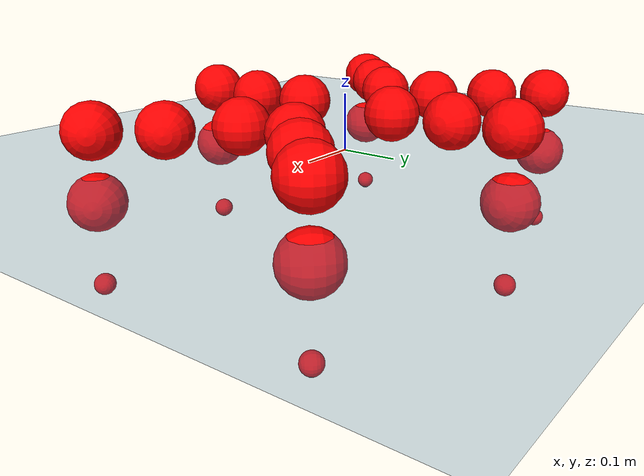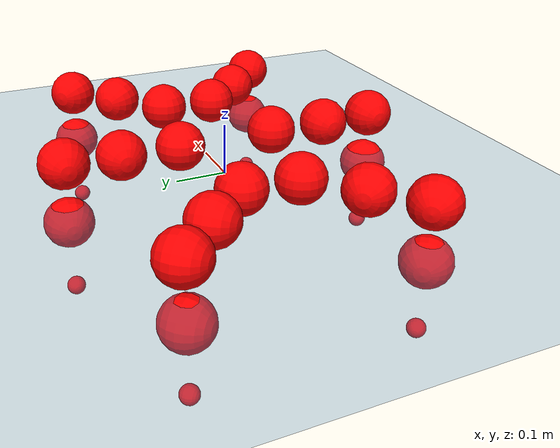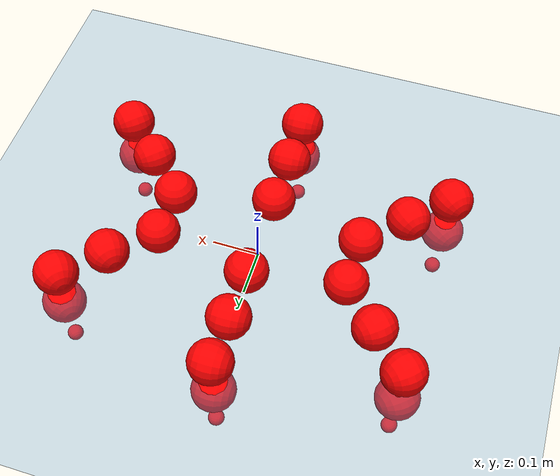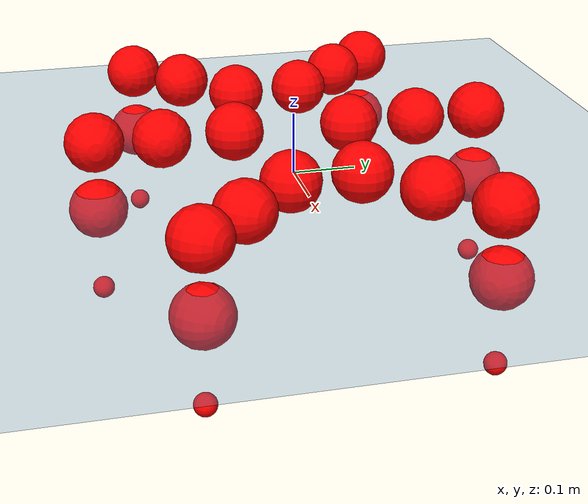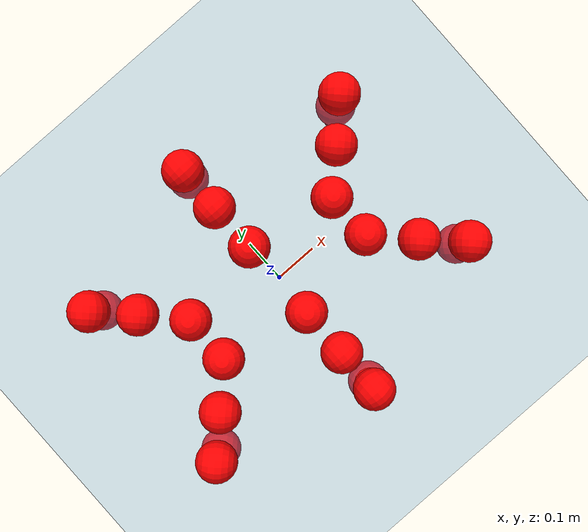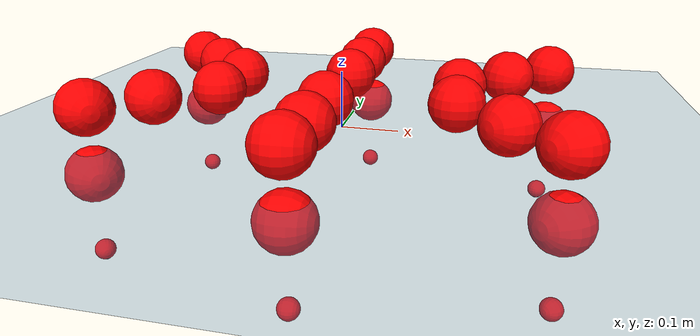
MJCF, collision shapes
<mujoco model="Golem">
  <compiler angle="radian" assetdir="assets" balanceinertia="true" inertiafromgeom="false"/>

  <option timestep="0.005" density="1.2" viscosity="2e-05"/>

  <size nkey="1"/>

  <visual>
    <quality shadowsize="8192"/>
    <map shadowclip="0.5"/>
  </visual>

  <default>
    <default class="/">
      <joint armature="0.01" damping="0.01" frictionloss="0.01"/>
      <geom contype="0" conaffinity="0" group="1" solref="-1000 -80"/>
      <site size="0.01 0.005 0.005" group="5"/>
      <general forcelimited="true" biastype="affine" gainprm="25" biasprm="0 -25 -0.5"/>
      <default class="visual">
        <geom type="mesh" group="2"/>
      </default>
      <default class="collision">
        <geom group="3"/>
      </default>
      <default class="foot">
        <geom size="0.01 0 0" condim="6" group="4" priority="1" solimp="0.015 1 0.01"/>
      </default>
      <default class="reward_collision_sphere">
        <geom group="5" rgba="1 0 0 1"/>
      </default>
    </default>
  </default>

  <asset>
    <texture type="skybox" colorspace="auto" name="//unnamed_texture_0" builtin="gradient" rgb1="0.95 0.95 0.95" rgb2="0.95 0.95 0.95" width="100" height="600"/>
    <texture type="2d" colorspace="auto" name="texplane" builtin="checker" rgb1="0.345 0.575 0.748" rgb2="0.345 0.575 0.748" markrgb="1 1 1" width="512" height="512"/>
    <material name="MatPlane" class="/" texture="texplane" texuniform="true" texrepeat="2 2" specular="0.9"/>
    <mesh name="body" class="/" file="body.stl" scale="0.001 0.001 0.001"/>
    <mesh name="coxa" class="/" file="coxa.stl" scale="0.001 0.001 0.001"/>
    <mesh name="femur" class="/" file="femur.stl" scale="0.001 0.001 0.001"/>
    <mesh name="tibia" class="/" file="tibia.stl" scale="0.001 0.001 0.001"/>
    <mesh name="tarsus" class="/" file="tarsus.stl" scale="0.001 0.001 0.001"/>
  </asset>

  <worldbody>
    <geom name="floor" class="/" size="100 100 0.125" type="plane" group="0" material="MatPlane"/>
    <light name="toplight_shadow" class="/" pos="0 0 5" dir="0.0990148 0.0990148 -0.990148" type="directional" ambient="0.04 0.04 0.04" diffuse="0.55 0.55 0.55" specular="0.12 0.12 0.12"/>
    <light name="toplight_fill" class="/" pos="0 0 5" dir="0.0990148 0.0990148 -0.990148" type="directional" castshadow="false" ambient="0.04 0.04 0.04" diffuse="0.3 0.3 0.3" specular="0.08 0.08 0.08"/>
    <body name="trunk" pos="-0.00283084 4.24037e-05 -0.00263845" quat="1 8.40707e-05 -6.64113e-05 -0.000104144">
      <inertial pos="0.000803734 -0.00150816 -0.00285136" quat="0.999961 0.00522005 -0.00218636 -0.00672227" mass="5.60617" diaginertia="0.0341092 0.00987892 0.0225711"/>
      <joint name="//unnamed_joint_0" type="free"/>
      <geom name="//unnamed_geom_1" class="/" pos="0 0 0.0756038" quat="1 0 0 0" type="mesh" rgba="0.9 0.9 0.9 1" mesh="body"/>
      <site name="imu" class="/" pos="0.179671 -0.00796543 0.105568" size="0.0115611"/>
      <camera name="track" class="/" pos="0 -1.99811 0" quat="0.707107 0.707107 0 0" mode="trackcom"/>
      <camera name="ego_camera" class="/" pos="0.167436 0 0.118131" quat="-0.5 -0.5 0.5 0.5"/>
      <body name="coxa_RR" pos="-0.229778 -0.0802847 0.0756001" quat="0.382691 0.000344587 -2.14083e-05 -0.923876">
        <inertial pos="-0.00147855 0.000542004 -0.00205276" quat="0.999899 -0.0103598 -0.00581107 0.00775532" mass="0.298075" diaginertia="0.035216 0.00970171 0.022134"/>
        <joint name="coxa_joint_RR" class="/" pos="0 0 0" axis="-0.00215721 0.00872757 -0.99996" range="-3.18481 3.17498" armature="0.0101266" damping="0" frictionloss="0.0099648"/>
        <geom name="//unnamed_geom_2" class="/" type="mesh" rgba="0.2 0.2 0.2 1" mesh="coxa"/>
        <geom name="//unnamed_geom_3" class="reward_collision_sphere" size="0.0462445" pos="-0.0386391 0 0"/>
        <body name="femur_RR" pos="0.0767005 0.000186665 0.000717354" quat="0.499969 -0.4999 0.500122 0.500009">
          <inertial pos="-0.00219247 0.00182202 0.0010426" quat="1 0.000651493 -0.000172937 -0.000101748" mass="0.308834" diaginertia="0.0363535 0.0100713 0.0233459"/>
          <joint name="femur_joint_RR" class="/" pos="0 0 0" axis="-0.00522791 -0.00539014 -0.999972" range="-3.14186 3.14495" armature="0.0123944" damping="0.0224247" frictionloss="0.0121335"/>
          <geom name="//unnamed_geom_4" class="/" type="mesh" rgba="0.9 0.9 0.9 1" mesh="femur"/>
          <geom name="//unnamed_geom_5" class="reward_collision_sphere" size="0.0462445"/>
          <body name="tibia_RR" pos="0.00132908 -0.10719 -0.000691632" quat="0.000155865 1 -5.0236e-05 -0.000510758">
            <inertial pos="0.00261963 -0.000671662 0.000185387" quat="0.999988 -0.00165988 0.00440941 0.00127199" mass="0.31992" diaginertia="0.0351876 0.00997992 0.0231392"/>
            <joint name="tibia_joint_RR" class="/" pos="0 0 0" axis="0.00357643 -0.00377628 0.999986" range="-3.14055 3.14451" armature="0.01091" damping="0.0181205" frictionloss="0.00992159"/>
            <geom name="//unnamed_geom_6" class="/" type="mesh" rgba="0.2 0.2 0.2 1" mesh="tibia"/>
            <geom name="//unnamed_geom_7" class="reward_collision_sphere" size="0.0462445"/>
            <body name="tarsus_RR" pos="0.112199 -0.000461305 -0.000414954" quat="1 0.000226705 -0.00020484 0.000358954">
              <inertial pos="0.0747087 -0.000914579 0.000645633" quat="0.494467 0.502753 0.492745 0.509847" mass="0.315588" diaginertia="0.0358502 0.00971942 0.0226521"/>
              <joint name="tarsus_joint_RR" class="/" pos="0 0 0" axis="0.000226315 0.0107339 0.999942" stiffness="0.000646296" range="-3.16262 3.15579" armature="0.0109464" damping="0.0170332" frictionloss="0.0112785"/>
              <geom name="//unnamed_geom_8" class="/" type="mesh" rgba="0.9 0.9 0.9 1" mesh="tarsus"/>
              <geom name="foot_1" class="foot" size="0.0127503" pos="0.144253 0 0" quat="0 -0.707107 0 0.707107"/>
              <geom name="//unnamed_geom_10" class="reward_collision_sphere" size="0.0462445"/>
              <geom name="//unnamed_geom_11" class="reward_collision_sphere" size="0.0173417" pos="0.138457 0 0"/>
              <site name="foot_1" class="foot" pos="0.144253 0 0" quat="0 -0.707107 0 0.707107" size="0.0115611"/>
            </body>
          </body>
        </body>
      </body>
      <body name="coxa_RM" pos="-0.00203058 -0.133534 0.0798551" quat="0.706906 0.000526727 0.00113673 -0.707306">
        <inertial pos="-0.00111209 -0.00279568 -0.00112023" quat="0.999976 0.00330988 0.00424498 0.00425414" mass="0.31676" diaginertia="0.0369842 0.00994066 0.0238506"/>
        <joint name="coxa_joint_RM" class="/" pos="0 0 0" axis="0.0086721 -0.00158787 -0.999961" range="-3.1428 3.13253" armature="0.0118532" damping="0.00816352" frictionloss="0.0120062"/>
        <geom name="//unnamed_geom_12" class="/" type="mesh" rgba="0.2 0.2 0.2 1" mesh="coxa"/>
        <geom name="//unnamed_geom_13" class="reward_collision_sphere" size="0.0462445" pos="-0.0386391 0 0"/>
        <body name="femur_RM" pos="0.0764952 -6.51659e-06 -0.00154023" quat="0.499415 -0.500575 0.50038 0.499629">
          <inertial pos="-0.00167405 -0.00287862 -0.000993628" quat="0.99999 -0.00372984 -0.0018839 -0.00176264" mass="0.318588" diaginertia="0.0358304 0.00997059 0.0237378"/>
          <joint name="femur_joint_RM" class="/" pos="0 0 0" axis="0.013889 0.00141228 -0.999903" stiffness="0.00661234" range="-3.125 3.1763" armature="0.0127411" damping="0.0192496" frictionloss="0.0103369"/>
          <geom name="//unnamed_geom_14" class="/" type="mesh" rgba="0.9 0.9 0.9 1" mesh="femur"/>
          <geom name="//unnamed_geom_15" class="reward_collision_sphere" size="0.0462445"/>
          <body name="tibia_RM" pos="-0.00304212 -0.104653 0.000868247" quat="0.000590389 0.999999 9.8119e-06 0.00112395">
            <inertial pos="-0.000579385 0.000747587 0.000902299" quat="1 0.000766386 -0.000378452 7.62047e-05" mass="0.312617" diaginertia="0.0376122 0.0105557 0.0233534"/>
            <joint name="tibia_joint_RM" class="/" pos="0 0 0" axis="0.00823414 0.00276552 0.999962" range="-3.10112 3.09296" armature="0.0118626" damping="0" frictionloss="0.0129364"/>
            <geom name="//unnamed_geom_16" class="/" type="mesh" rgba="0.2 0.2 0.2 1" mesh="tibia"/>
            <geom name="//unnamed_geom_17" class="reward_collision_sphere" size="0.0462445"/>
            <body name="tarsus_RM" pos="0.109762 -0.000412127 -0.00163576" quat="1 5.53007e-05 -0.000271423 4.63459e-05">
              <inertial pos="0.0766045 0.000306018 0.00307137" quat="0.509193 0.501019 0.490054 0.499549" mass="0.314081" diaginertia="0.0374435 0.0101761 0.0231104"/>
              <joint name="tarsus_joint_RM" class="/" pos="0 0 0" axis="-0.00153672 0.00778595 0.999969" range="-3.18444 3.10836" armature="0.0115818" damping="0.0139373" frictionloss="0.0111367"/>
              <geom name="//unnamed_geom_18" class="/" type="mesh" rgba="0.9 0.9 0.9 1" mesh="tarsus"/>
              <geom name="foot_2" class="foot" size="0.0122203" pos="0.144253 0 0" quat="0 -0.707107 0 0.707107"/>
              <geom name="//unnamed_geom_20" class="reward_collision_sphere" size="0.0462445"/>
              <geom name="//unnamed_geom_21" class="reward_collision_sphere" size="0.0173417" pos="0.138457 0 0"/>
              <site name="foot_2" class="foot" pos="0.144253 0 0" quat="0 -0.707107 0 0.707107" size="0.0115611"/>
            </body>
          </body>
        </body>
      </body>
      <body name="coxa_RF" pos="0.231113 -0.0803397 0.0746342" quat="0.923909 -0.000890895 -0.000840801 -0.38261">
        <inertial pos="0.00209868 -0.000557252 0.000328284" quat="0.999982 -0.00452299 -0.0038323 0.000233561" mass="0.315908" diaginertia="0.0359638 0.0103032 0.023855"/>
        <joint name="coxa_joint_RF" class="/" pos="0 0 0" axis="0.0108919 0.00684247 -0.999917" range="-3.14071 3.19428" armature="0.012092" damping="0" frictionloss="0.0113476"/>
        <geom name="//unnamed_geom_22" class="/" type="mesh" rgba="0.2 0.2 0.2 1" mesh="coxa"/>
        <geom name="//unnamed_geom_23" class="reward_collision_sphere" size="0.0462445" pos="-0.0386391 0 0"/>
        <body name="femur_RF" pos="0.077939 -0.00197023 -0.00310435" quat="0.500143 -0.499564 0.500228 0.500065">
          <inertial pos="-0.000513444 -0.000101839 0.00265431" quat="0.999987 -0.00035631 -0.00367284 0.00340518" mass="0.30855" diaginertia="0.0355302 0.0101516 0.0240273"/>
          <joint name="femur_joint_RF" class="/" pos="0 0 0" axis="-0.000782749 0.00099888 -0.999999" range="-3.10336 3.14585" armature="0.0116828" damping="0.00836479" frictionloss="0.00996813"/>
          <geom name="//unnamed_geom_24" class="/" type="mesh" rgba="0.9 0.9 0.9 1" mesh="femur"/>
          <geom name="//unnamed_geom_25" class="reward_collision_sphere" size="0.0462445"/>
          <body name="tibia_RF" pos="-0.00318216 -0.10866 0.0026689" quat="-0.000121558 1 1.83983e-05 -3.05169e-05">
            <inertial pos="0.00290162 -0.00245102 -0.000228938" quat="0.999977 -0.00350468 -0.00583273 -0.000248588" mass="0.304459" diaginertia="0.0349201 0.00961066 0.0229971"/>
            <joint name="tibia_joint_RF" class="/" pos="0 0 0" axis="-0.0119932 -0.0037096 0.999921" range="-3.14348 3.13461" armature="0.0116355" damping="0.0183169" frictionloss="0.0121676"/>
            <geom name="//unnamed_geom_26" class="/" type="mesh" rgba="0.2 0.2 0.2 1" mesh="tibia"/>
            <geom name="//unnamed_geom_27" class="reward_collision_sphere" size="0.0462445"/>
            <body name="tarsus_RF" pos="0.113784 0.000479988 -0.000525248" quat="0.999999 0.00020422 -1.52133e-05 0.00137091">
              <inertial pos="0.0801436 -0.00203989 0.00177846" quat="0.497055 0.496139 0.505274 0.501479" mass="0.305006" diaginertia="0.0358657 0.00968958 0.0238886"/>
              <joint name="tarsus_joint_RF" class="/" pos="0 0 0" axis="-0.0126766 0.00555911 0.999904" range="-3.19406 3.13929" armature="0.0115398" damping="0.0146563" frictionloss="0.0108584"/>
              <geom name="//unnamed_geom_28" class="/" type="mesh" rgba="0.9 0.9 0.9 1" mesh="tarsus"/>
              <geom name="foot_3" class="foot" size="0.0114866" pos="0.144253 0 0" quat="0 -0.707107 0 0.707107"/>
              <geom name="//unnamed_geom_30" class="reward_collision_sphere" size="0.0462445"/>
              <geom name="//unnamed_geom_31" class="reward_collision_sphere" size="0.0173417" pos="0.138457 0 0"/>
              <site name="foot_3" class="foot" pos="0.144253 0 0" quat="0 -0.707107 0 0.707107" size="0.0115611"/>
            </body>
          </body>
        </body>
      </body>
      <body name="coxa_LR" pos="-0.227788 0.0840228 0.076841" quat="0.382357 -0.000213989 0.00115822 0.924014">
        <inertial pos="0.000218757 -0.000610576 0.00242893" quat="0.999987 0.00108458 0.0046512 -0.00158744" mass="0.311517" diaginertia="0.0363324 0.0102923 0.0230026"/>
        <joint name="coxa_joint_LR" class="/" pos="0 0 0" axis="-0.000352838 -0.00206411 -0.999998" range="-3.18892 3.16823" armature="0.0103209" damping="0.00885319" frictionloss="0.0106024"/>
        <geom name="//unnamed_geom_32" class="/" type="mesh" rgba="0.2 0.2 0.2 1" mesh="coxa"/>
        <geom name="//unnamed_geom_33" class="reward_collision_sphere" size="0.0462445" pos="-0.0386391 0 0"/>
        <body name="femur_LR" pos="0.0754634 -0.00335195 0.00101361" quat="0.499926 -0.499849 0.500447 0.499778">
          <inertial pos="0.00218874 -0.00245983 0.00270205" quat="0.999961 -0.0050324 -8.47887e-05 0.00720648" mass="0.306302" diaginertia="0.0359155 0.0099934 0.0232671"/>
          <joint name="femur_joint_LR" class="/" pos="0 0 0" axis="0.0083475 -0.00246309 0.999962" stiffness="0.00138825" range="-3.16229 3.10145" armature="0.0105176" damping="0" frictionloss="0.0114772"/>
          <geom name="//unnamed_geom_34" class="/" type="mesh" rgba="0.9 0.9 0.9 1" mesh="femur"/>
          <geom name="//unnamed_geom_35" class="reward_collision_sphere" size="0.0462445"/>
          <body name="tibia_LR" pos="0.00220542 -0.106552 -0.000121401" quat="0.000830165 0.999999 7.6209e-05 0.000992408">
            <inertial pos="0.00266202 -0.00234846 0.00172641" quat="0.999997 -0.00118159 -0.00199036 -0.000311975" mass="0.321333" diaginertia="0.0359216 0.0103209 0.0223364"/>
            <joint name="tibia_joint_LR" class="/" pos="0 0 0" axis="0.0042781 -0.0096235 -0.999945" range="-3.1543 3.09101" armature="0.0105283" damping="0.0128159" frictionloss="0.0117398"/>
            <geom name="//unnamed_geom_36" class="/" type="mesh" rgba="0.2 0.2 0.2 1" mesh="tibia"/>
            <geom name="//unnamed_geom_37" class="reward_collision_sphere" size="0.0462445"/>
            <body name="tarsus_LR" pos="0.115382 -0.000923463 -0.00243239" quat="1 0.000282999 -0.000808483 -0.000339257">
              <inertial pos="0.0754692 -0.00235392 -0.00141597" quat="0.499412 0.500229 0.500489 0.499869" mass="0.308909" diaginertia="0.0358081 0.00981899 0.0240857"/>
              <joint name="tarsus_joint_LR" class="/" pos="0 0 0" axis="0.00142604 0.00384033 -0.999992" range="-3.12864 3.12096" armature="0.0128503" damping="0.0281786" frictionloss="0.0127941"/>
              <geom name="//unnamed_geom_38" class="/" type="mesh" rgba="0.9 0.9 0.9 1" mesh="tarsus"/>
              <geom name="foot_4" class="foot" size="0.0112744" pos="0.144253 0 0" quat="0.707107 0 -0.707107 0"/>
              <geom name="//unnamed_geom_40" class="reward_collision_sphere" size="0.0462445"/>
              <geom name="//unnamed_geom_41" class="reward_collision_sphere" size="0.0173417" pos="0.138457 0 0"/>
              <site name="foot_4" class="foot" pos="0.144253 0 0" quat="0.707107 0 -0.707107 0" size="0.0115611"/>
            </body>
          </body>
        </body>
      </body>
      <body name="coxa_LM" pos="-0.00240779 0.130514 0.0779302" quat="0.707008 -0.000175401 -4.6562e-05 0.707205">
        <inertial pos="0.00237621 0.000160689 0.00223206" quat="0.999962 0.0017495 0.0029807 0.00806256" mass="0.300985" diaginertia="0.0347758 0.00968838 0.0221317"/>
        <joint name="coxa_joint_LM" class="/" pos="0 0 0" axis="-0.00707403 -0.00370806 -0.999968" stiffness="0.00869265" range="-3.15687 3.13609" armature="0.0114576" damping="0" frictionloss="0.00993316"/>
        <geom name="//unnamed_geom_42" class="/" type="mesh" rgba="0.2 0.2 0.2 1" mesh="coxa"/>
        <geom name="//unnamed_geom_43" class="reward_collision_sphere" size="0.0462445" pos="-0.0386391 0 0"/>
        <body name="femur_LM" pos="0.0739332 0.000456758 0.00165542" quat="0.499846 -0.500128 0.500096 0.49993">
          <inertial pos="0.00279907 0.000237814 -0.0027326" quat="0.999974 0.00176727 -0.00647966 -0.00267825" mass="0.312998" diaginertia="0.0363632 0.0104386 0.0245064"/>
          <joint name="femur_joint_LM" class="/" pos="0 0 0" axis="-0.000488486 -0.00798476 0.999968" range="-3.10497 3.08903" armature="0.011167" damping="0.015148" frictionloss="0.0115667"/>
          <geom name="//unnamed_geom_44" class="/" type="mesh" rgba="0.9 0.9 0.9 1" mesh="femur"/>
          <geom name="//unnamed_geom_45" class="reward_collision_sphere" size="0.0462445"/>
          <body name="tibia_LM" pos="-0.00209535 -0.103433 -0.00097294" quat="-0.000171365 1 0.000297392 -0.000556881">
            <inertial pos="-0.00175613 0.000322371 -0.00018048" quat="0.999973 0.00492865 -0.00245247 -0.00481516" mass="0.305198" diaginertia="0.034832 0.00972612 0.0234957"/>
            <joint name="tibia_joint_LM" class="/" pos="0 0 0" axis="0.000937577 -0.000969948 -0.999999" stiffness="0.0117913" range="-3.11805 3.09051" armature="0.0099254" damping="0.0148135" frictionloss="0.0112025"/>
            <geom name="//unnamed_geom_46" class="/" type="mesh" rgba="0.2 0.2 0.2 1" mesh="tibia"/>
            <geom name="//unnamed_geom_47" class="reward_collision_sphere" size="0.0462445"/>
            <body name="tarsus_LM" pos="0.115784 0.00192587 -0.00224513" quat="1 -0.000873453 1.81413e-05 -0.000220229">
              <inertial pos="0.0750325 2.44559e-05 -0.002794" quat="0.50039 0.493061 0.509325 0.497081" mass="0.312283" diaginertia="0.0345684 0.00995464 0.0224562"/>
              <joint name="tarsus_joint_LM" class="/" pos="0 0 0" axis="6.74236e-05 0.000709958 -1" range="-3.08546 3.13912" armature="0.0123852" damping="0.0170656" frictionloss="0.010978"/>
              <geom name="//unnamed_geom_48" class="/" type="mesh" rgba="0.9 0.9 0.9 1" mesh="tarsus"/>
              <geom name="foot_5" class="foot" size="0.0118546" pos="0.144253 0 0" quat="0.707107 0 -0.707107 0"/>
              <geom name="//unnamed_geom_50" class="reward_collision_sphere" size="0.0462445"/>
              <geom name="//unnamed_geom_51" class="reward_collision_sphere" size="0.0173417" pos="0.138457 0 0"/>
              <site name="foot_5" class="foot" pos="0.144253 0 0" quat="0.707107 0 -0.707107 0" size="0.0115611"/>
            </body>
          </body>
        </body>
      </body>
      <body name="coxa_LF" pos="0.228956 0.082065 0.0777406" quat="0.923963 -0.000359054 0.000810873 0.38248">
        <inertial pos="-0.000100668 -0.00104341 -0.000660301" quat="0.999943 0.0040876 -0.00266581 -0.00952068" mass="0.316752" diaginertia="0.0361495 0.0100236 0.0232671"/>
        <joint name="coxa_joint_LF" class="/" pos="0 0 0" axis="0.00619375 -0.00803675 -0.999949" range="-3.0841 3.1316" armature="0.0130681" damping="0.0171174" frictionloss="0.0101275"/>
        <geom name="//unnamed_geom_52" class="/" type="mesh" rgba="0.2 0.2 0.2 1" mesh="coxa"/>
        <geom name="//unnamed_geom_53" class="reward_collision_sphere" size="0.0462445" pos="-0.0386391 0 0"/>
        <body name="femur_LF" pos="0.0743432 -0.00188985 0.000621875" quat="0.500016 -0.499988 0.499995 0.500001">
          <inertial pos="0.000463239 0.00278151 -0.00216764" quat="0.999995 0.00231833 0.00150438 -0.00126466" mass="0.319915" diaginertia="0.037464 0.0102491 0.0230015"/>
          <joint name="femur_joint_LF" class="/" pos="0 0 0" axis="-0.00556441 0.00449426 0.999974" stiffness="0.00491896" range="-3.1455 3.143" armature="0.0131547" damping="0" frictionloss="0.0117917"/>
          <geom name="//unnamed_geom_54" class="/" type="mesh" rgba="0.9 0.9 0.9 1" mesh="femur"/>
          <geom name="//unnamed_geom_55" class="reward_collision_sphere" size="0.0462445"/>
          <body name="tibia_LF" pos="0.00126622 -0.110573 0.000612994" quat="0.000217402 1 -0.000116117 -0.000250325">
            <inertial pos="0.00168065 0.00175936 0.000856746" quat="0.999968 -0.00713529 -0.000439089 0.00345907" mass="0.306774" diaginertia="0.0347351 0.010233 0.0231261"/>
            <joint name="tibia_joint_LF" class="/" pos="0 0 0" axis="0.00167313 -0.0101118 -0.999947" stiffness="0.00995005" range="-3.08322 3.10373" armature="0.0114731" damping="0.000192309" frictionloss="0.00992202"/>
            <geom name="//unnamed_geom_56" class="/" type="mesh" rgba="0.2 0.2 0.2 1" mesh="tibia"/>
            <geom name="//unnamed_geom_57" class="reward_collision_sphere" size="0.0462445"/>
            <body name="tarsus_LF" pos="0.110421 0.00238503 0.000666777" quat="1 -5.21813e-05 0.00017046 7.00873e-05">
              <inertial pos="0.0746774 -0.000435875 0.00171377" quat="0.510109 0.494539 0.500044 0.495152" mass="0.304753" diaginertia="0.036106 0.00993909 0.0230986"/>
              <joint name="tarsus_joint_LF" class="/" pos="0 0 0" axis="0.00105128 0.000676398 -0.999999" stiffness="0.00724285" range="-3.18802 3.10718" armature="0.01328" damping="0.0136934" frictionloss="0.013152"/>
              <geom name="//unnamed_geom_58" class="/" type="mesh" rgba="0.9 0.9 0.9 1" mesh="tarsus"/>
              <geom name="foot_6" class="foot" size="0.0126515" pos="0.144253 0 0" quat="0.707107 0 -0.707107 0"/>
              <geom name="//unnamed_geom_60" class="reward_collision_sphere" size="0.0462445"/>
              <geom name="//unnamed_geom_61" class="reward_collision_sphere" size="0.0173417" pos="0.138457 0 0"/>
              <site name="foot_6" class="foot" pos="0.144253 0 0" quat="0.707107 0 -0.707107 0" size="0.0115611"/>
            </body>
          </body>
        </body>
      </body>
    </body>
  </worldbody>

  <contact>
    <pair class="/" geom1="floor" geom2="foot_1" name="//unnamed_contact_0"/>
    <pair class="/" geom1="floor" geom2="foot_2" name="//unnamed_contact_1"/>
    <pair class="/" geom1="floor" geom2="foot_3" name="//unnamed_contact_2"/>
    <pair class="/" geom1="floor" geom2="foot_4" name="//unnamed_contact_3"/>
    <pair class="/" geom1="floor" geom2="foot_5" name="//unnamed_contact_4"/>
    <pair class="/" geom1="floor" geom2="foot_6" name="//unnamed_contact_5"/>
  </contact>

  <actuator>
    <general name="coxa_joint_RR" class="/" joint="coxa_joint_RR" forcerange="-8.30588 8.30588" gainprm="28.9396" biasprm="0 -28.9396 -0.617147"/>
    <general name="femur_joint_RR" class="/" joint="femur_joint_RR" forcerange="-8.47901 8.47901" gainprm="28.9396" biasprm="0 -28.9396 -0.617147"/>
    <general name="tibia_joint_RR" class="/" joint="tibia_joint_RR" forcerange="-8.43817 8.43817" gainprm="28.9396" biasprm="0 -28.9396 -0.617147"/>
    <general name="tarsus_joint_RR" class="/" joint="tarsus_joint_RR" forcerange="-8.11258 8.11258" gainprm="28.9396" biasprm="0 -28.9396 -0.617147"/>
    <general name="coxa_joint_RM" class="/" joint="coxa_joint_RM" forcerange="-8.7738 8.7738" gainprm="28.9396" biasprm="0 -28.9396 -0.617147"/>
    <general name="femur_joint_RM" class="/" joint="femur_joint_RM" forcerange="-8.472 8.472" gainprm="28.9396" biasprm="0 -28.9396 -0.617147"/>
    <general name="tibia_joint_RM" class="/" joint="tibia_joint_RM" forcerange="-8.4917 8.4917" gainprm="28.9396" biasprm="0 -28.9396 -0.617147"/>
    <general name="tarsus_joint_RM" class="/" joint="tarsus_joint_RM" forcerange="-7.58037 7.58037" gainprm="28.9396" biasprm="0 -28.9396 -0.617147"/>
    <general name="coxa_joint_RF" class="/" joint="coxa_joint_RF" forcerange="-8.76627 8.76627" gainprm="28.9396" biasprm="0 -28.9396 -0.617147"/>
    <general name="femur_joint_RF" class="/" joint="femur_joint_RF" forcerange="-8.42306 8.42306" gainprm="28.9396" biasprm="0 -28.9396 -0.617147"/>
    <general name="tibia_joint_RF" class="/" joint="tibia_joint_RF" forcerange="-8.35538 8.35538" gainprm="28.9396" biasprm="0 -28.9396 -0.617147"/>
    <general name="tarsus_joint_RF" class="/" joint="tarsus_joint_RF" forcerange="-8.21869 8.21869" gainprm="28.9396" biasprm="0 -28.9396 -0.617147"/>
    <general name="coxa_joint_LR" class="/" joint="coxa_joint_LR" forcerange="-7.91208 7.91208" gainprm="28.9396" biasprm="0 -28.9396 -0.617147"/>
    <general name="femur_joint_LR" class="/" joint="femur_joint_LR" forcerange="-7.69327 7.69327" gainprm="28.9396" biasprm="0 -28.9396 -0.617147"/>
    <general name="tibia_joint_LR" class="/" joint="tibia_joint_LR" forcerange="-8.30592 8.30592" gainprm="28.9396" biasprm="0 -28.9396 -0.617147"/>
    <general name="tarsus_joint_LR" class="/" joint="tarsus_joint_LR" forcerange="-8.43901 8.43901" gainprm="28.9396" biasprm="0 -28.9396 -0.617147"/>
    <general name="coxa_joint_LM" class="/" joint="coxa_joint_LM" forcerange="-8.47693 8.47693" gainprm="28.9396" biasprm="0 -28.9396 -0.617147"/>
    <general name="femur_joint_LM" class="/" joint="femur_joint_LM" forcerange="-7.64588 7.64588" gainprm="28.9396" biasprm="0 -28.9396 -0.617147"/>
    <general name="tibia_joint_LM" class="/" joint="tibia_joint_LM" forcerange="-8.48627 8.48627" gainprm="28.9396" biasprm="0 -28.9396 -0.617147"/>
    <general name="tarsus_joint_LM" class="/" joint="tarsus_joint_LM" forcerange="-9.31965 9.31965" gainprm="28.9396" biasprm="0 -28.9396 -0.617147"/>
    <general name="coxa_joint_LF" class="/" joint="coxa_joint_LF" forcerange="-8.01213 8.01213" gainprm="28.9396" biasprm="0 -28.9396 -0.617147"/>
    <general name="femur_joint_LF" class="/" joint="femur_joint_LF" forcerange="-9.31815 9.31815" gainprm="28.9396" biasprm="0 -28.9396 -0.617147"/>
    <general name="tibia_joint_LF" class="/" joint="tibia_joint_LF" forcerange="-8.37978 8.37978" gainprm="28.9396" biasprm="0 -28.9396 -0.617147"/>
    <general name="tarsus_joint_LF" class="/" joint="tarsus_joint_LF" forcerange="-8.21772 8.21772" gainprm="28.9396" biasprm="0 -28.9396 -0.617147"/>
  </actuator>

  <sensor>
    <gyro site="imu" name="imu_angular_velocity"/>
    <velocimeter site="imu" name="imu_linear_velocity"/>
    <framelinvel objtype="site" objname="foot_1" name="foot_1_global_linear_velocity"/>
    <framelinvel objtype="site" objname="foot_2" name="foot_2_global_linear_velocity"/>
    <framelinvel objtype="site" objname="foot_3" name="foot_3_global_linear_velocity"/>
    <framelinvel objtype="site" objname="foot_4" name="foot_4_global_linear_velocity"/>
    <framelinvel objtype="site" objname="foot_5" name="foot_5_global_linear_velocity"/>
    <framelinvel objtype="site" objname="foot_6" name="foot_6_global_linear_velocity"/>
  </sensor>

  <keyframe>
    <key name="home" qpos="0 0 0.1457 1 0 0 0 0 0 0 0 0 0 0 0 0 0 0 0 0 0 0 0 0 0 0 0 0 0 0 0"/>
  </keyframe>
</mujoco>
